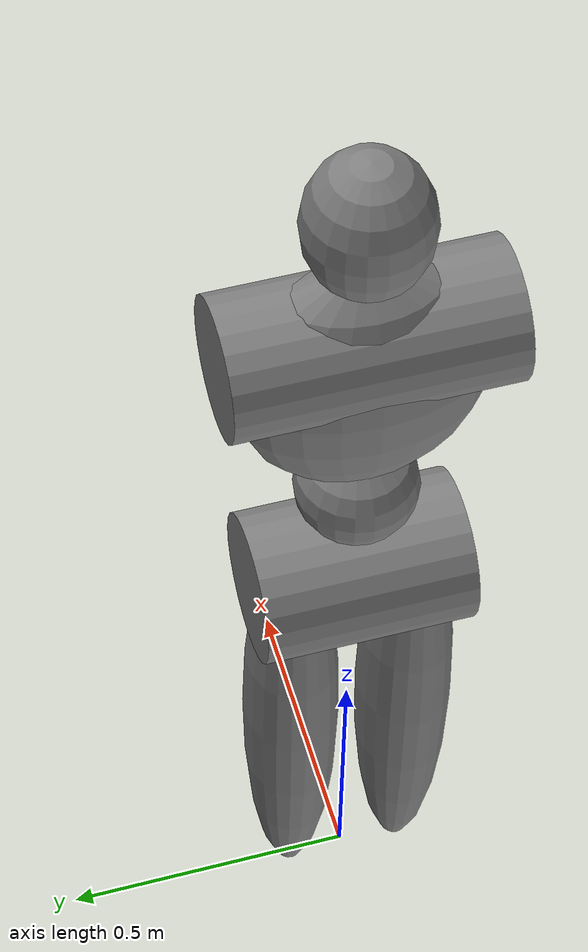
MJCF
<mujoco model="main">

    <worldbody>

        <body name="pernas" pos="0 0 0" >

            <!-- Perna esquerda: deslocada para Y=-0.1-->
            <geom type="ellipsoid" pos="0 -0.1 0.5" size="0.1 0.08 0.5" mass="14"/>

            <!-- Perna direita: deslocada para Y=0.1-->
            <geom type="ellipsoid" pos="0 0.1 0.5" size="0.1 0.08 0.5" mass="14"/>

            <!-- pelvis -->
            <geom type="cylinder" fromto="0 -0.175 0.875  0 0.175 0.875 " size="0.125" mass="10"/>

            <!-- anca-->
            <body name="anca_z" pos="0 0 1.0">
                <inertial pos="0 0 0.1" mass="0.01" diaginertia="0.0001 0.0001 0.0001"/>
                <joint name="rot_anca_z" type="hinge" axis="0 0 1" range="-80 80" damping="0.5"/>

                <body name="anca_y">
                    <inertial pos="0 0 0.1" mass="0.01" diaginertia="0.0001 0.0001 0.0001"/>
                    <joint name="rot_anca_y" type="hinge" axis="0 1 0" range="-15 40" damping="0.5"/>

                    <body name="anca_x" >
                        <joint name="rot_anca_x" type="hinge" axis="1 0 0" range="-30 30" damping="0.5"/>
                        <geom type="sphere" pos="0 0 0.1" size="0.1" mass="8"/>

                        <!-- o torax representa a caixa toráxica-->
                        <body name="torax" pos="0 0 0.15">
                            <geom type="ellipsoid" pos="0 0 0.225" size="0.1125 0.2 0.225" mass="13"/>
                                <geom type="cylinder" fromto="0 -0.225 0.3 0 0.225 0.3" size="0.1125"/>
                            <geom type="ellipsoid" pos="0 0 0.55" size="0.1 0.1 0.125" mass ="5"/>

                        </body>
                    </body>
                </body>
            </body>
        </body>

    </worldbody>

</mujoco>
